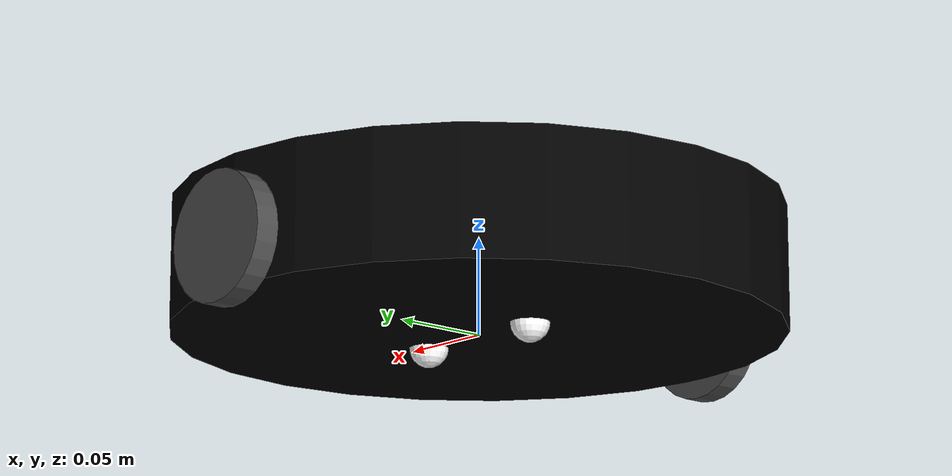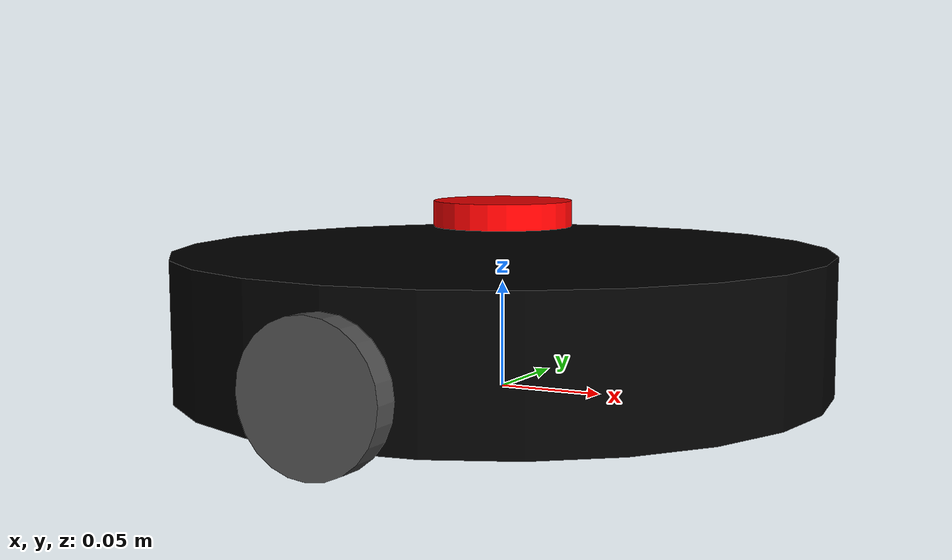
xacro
<?xml version="1.0"?>
<robot xmlns:xacro="http://www.ros.org/wiki/xacro" name="robot">

    <xacro:arg name="use_ros2_control" default="true"/>

    <xacro:include filename="$(find my_bot)/description/robot_core.xacro"/>

    <xacro:if value="$(arg use_ros2_control)">
        <xacro:include filename="$(find my_bot)/description/ros2_control.xacro"/>
    </xacro:if>
    <xacro:unless value="$(arg use_ros2_control)">
        <xacro:include filename="$(find my_bot)/description/gazebo_control.xacro"/>
    </xacro:unless>
    <xacro:include filename="$(find my_bot)/description/lidar.xacro"/>
</robot>

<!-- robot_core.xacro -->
<robot xmlns:xacro="http://www.ros.org/wiki/xacro">

    <xacro:property name="chassis_radius" value="0.155"/>
    <xacro:property name="chassis_length" value="0.065"/>
    <xacro:property name="chassis_mass" value="1.5"/>
    <xacro:property name="chassis_offset_z" value="0.0325"/>

    <xacro:property name="wheel_radius" value="0.0325"/>
    <xacro:property name="wheel_thickness" value="0.012"/>
    <xacro:property name="wheel_mass" value="0.05"/>
    <xacro:property name="wheel_offset_y" value="0.160"/>
    <xacro:property name="wheel_offset_z" value="-0.010"/>

    <xacro:property name="caster_wheel_radius" value="0.010"/>
    <xacro:property name="caster_wheel_mass" value="0.02"/>
    <xacro:property name="caster_wheel_offset_x" value="0.038"/>

    <xacro:include filename="inertial_macros.xacro"/>

    <material name="white">
        <color rgba="1 1 1 1"/>
    </material>

    <material name="blue">
        <color rgba="0.2 0.2 1 1"/>
    </material>

    <material name="black">
        <color rgba="0 0 0 1"/>
    </material>

    <material name="dark_grey">
        <color rgba="0.3 0.3 0.3 1"/>
    </material>

    <!-- Base link: ground reference frame -->

    <link name="base_link"/>

    <!-- BASE_FOOTPRINT LINK-->

    <joint name="base_footprint_joint" type="fixed">
        <parent link="base_link"/>
        <child link="base_footprint"/>
        <origin xyz="0 0 0" rpy="0 0 0"/>
    </joint>

    <link name="base_footprint"/>

    <!-- Chassis -->

    <joint name="chassis_joint" type="fixed">
        <parent link="base_link"/>
        <child link="chassis"/>
        <origin xyz="0 0 0.0325"/>
    </joint>

    <link name="chassis">
        <visual>
            <origin xyz="0.0 0.0 0.0" rpy="0.0 0.0 0.0"/>
            <geometry>
                <cylinder radius="0.155" length="0.065"/>
            </geometry>
            <material name="black"/>
        </visual>
        <collision>
            <origin xyz="0.0 0.0 0.0" rpy="0.0 0.0 0.0"/>
            <geometry>
                <cylinder radius="0.155" length="0.065"/>
            </geometry>
        </collision>
        <xacro:inertial_cylinder mass="1.5" length="0.065" radius="0.155">
            <origin xyz="0 0 0" rpy="0 0 0"/>
        </xacro:inertial_cylinder>
    </link>

    <!-- Left wheel -->

    <joint name="left_wheel_joint" type="continuous">
        <parent link="chassis"/>
        <child link="left_wheel"/>
        <origin xyz="0 0.160 -0.010" rpy="-1.5707 0 0"/>
        <axis xyz="0 0 1"/>
    </joint>

    <link name="left_wheel">
        <visual>
            <geometry>
                <cylinder radius="0.0325" length="0.012"/>
            </geometry>
            <material name="dark_grey"/>
        </visual>
        <collision>
            <geometry>
                <cylinder radius="0.0325" length="0.012"/>
            </geometry>
        </collision>
        <xacro:inertial_cylinder mass="0.05" length="0.012" radius="0.0325">
            <origin xyz="0 0 0" rpy="0 0 0"/>
        </xacro:inertial_cylinder>
    </link>

    <!-- Right wheel -->

    <joint name="right_wheel_joint" type="continuous">
        <parent link="chassis"/>
        <child link="right_wheel"/>
        <origin xyz="0 -0.160 -0.010" rpy="-1.5707 0 0"/>
        <axis xyz="0 0 1"/>
    </joint>

    <link name="right_wheel">
        <visual>
            <origin xyz="0 0 0" rpy="0 0 0"/>
            <geometry>
                <cylinder radius="0.0325" length="0.012"/>
            </geometry>
            <material name="dark_grey"/>
        </visual>
        <collision>
            <origin xyz="0 0 0" rpy="0 0 0"/>
            <geometry>
                <cylinder radius="0.0325" length="0.012"/>
            </geometry>
        </collision>
        <xacro:inertial_cylinder mass="0.05" length="0.012" radius="0.0325">
            <origin xyz="0 0 0" rpy="0 0 0"/>
        </xacro:inertial_cylinder>
    </link>

    <!-- Right caster wheel (all offset lives in the joint; link-local
         origins are identity so the offset isn't applied twice) -->

    <joint name="right_caster_joint" type="fixed">
        <parent link="base_link"/>
        <child link="right_caster_link"/>
        <origin xyz="0.038 0.0 0.0" rpy="0.0 0.0 0.0"/>
    </joint>

    <link name="right_caster_link">
        <visual>
            <geometry>
                <sphere radius="0.010"/>
            </geometry>
            <material name="white"/>
        </visual>
        <collision>
            <geometry>
                <sphere radius="0.010"/>
            </geometry>
        </collision>
        <xacro:inertial_sphere mass="0.02" radius="0.010">
            <origin xyz="0 0 0" rpy="0 0 0"/>
        </xacro:inertial_sphere>
    </link>

    <!-- Left caster wheel -->

    <joint name="left_caster_joint" type="fixed">
        <parent link="base_link"/>
        <child link="left_caster_link"/>
        <origin xyz="-0.038 0.0 0.0" rpy="0.0 0.0 0.0"/>
    </joint>

    <link name="left_caster_link">
        <visual>
            <geometry>
                <sphere radius="0.010"/>
            </geometry>
            <material name="white"/>
        </visual>
        <collision>
            <geometry>
                <sphere radius="0.010"/>
            </geometry>
        </collision>
        <xacro:inertial_sphere mass="0.02" radius="0.010">
            <origin xyz="0 0 0" rpy="0 0 0"/>
        </xacro:inertial_sphere>
    </link>

</robot>

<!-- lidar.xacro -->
<robot xmlns:xacro="http://www.ros.org/wiki/xacro">

    <!-- Include directly rather than relying on parent-file include order -->
    <xacro:include filename="inertial_macros.xacro"/>

    <material name="red">
        <color rgba="1 0 0 1"/>
    </material>

    <joint name="laser_joint" type="fixed">
        <parent link="chassis"/>
        <child link="laser_frame"/>
        <origin xyz="0.0 0.0 0.05" rpy="0.0 0.0 0.0"/>
    </joint>

    <link name="laser_frame">
        <visual>
            <geometry>
                <cylinder radius="0.0325" length="0.012"/>
            </geometry>
            <material name="red"/>
        </visual>

        <collision>
            <geometry>
                <cylinder radius="0.0325" length="0.012"/>
            </geometry>
        </collision>

        <xacro:inertial_cylinder mass="0.01" length="0.012" radius="0.0325">
            <origin xyz="0 0 0" rpy="0 0 0"/>
        </xacro:inertial_cylinder>
    </link>

    <gazebo reference="laser_frame">
        <material>Gazebo/Red</material>

        <sensor name="lidar" type="gpu_lidar">
            <pose>0 0 0 0 0 0</pose>
            <topic>scan</topic>
            <visualize>true</visualize>
            <update_rate>10</update_rate>
            <always_on>true</always_on>
            <!-- Must match an actual URDF link so RViz/SLAM can resolve the
                 scan's TF frame. -->
            <gz_frame_id>laser_frame</gz_frame_id>

            <lidar>
                <scan>
                    <horizontal>
                        <samples>720</samples>
                        <resolution>1</resolution>
                        <min_angle>-3.14159</min_angle>
                        <max_angle>3.14159</max_angle>
                    </horizontal>
                    <vertical>
                        <samples>1</samples>
                        <resolution>1</resolution>
                        <min_angle>0</min_angle>
                        <max_angle>0</max_angle>
                    </vertical>
                </scan>
                <range>
                    <min>0.1</min>
                    <max>12.0</max>
                    <resolution>0.01</resolution>
                </range>
                <noise>
                    <type>gaussian</type>
                    <mean>0.0</mean>
                    <stddev>0.01</stddev>
                </noise>
            </lidar>
        </sensor>
    </gazebo>

</robot>
